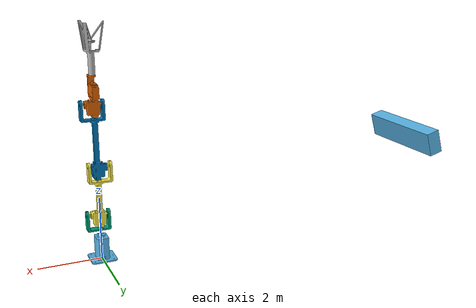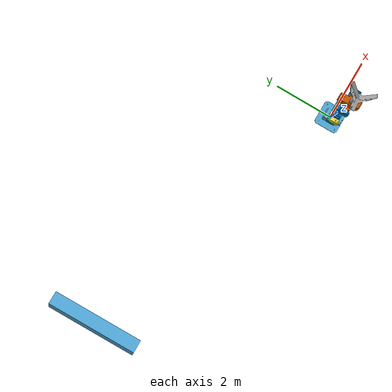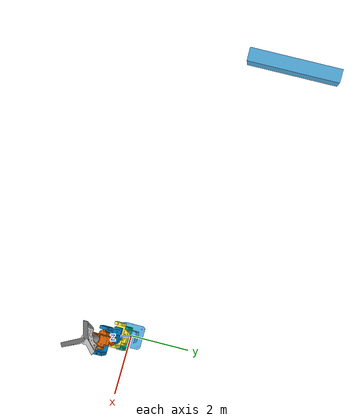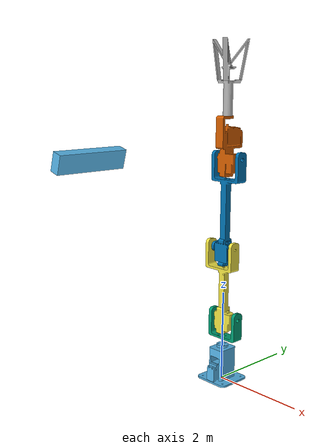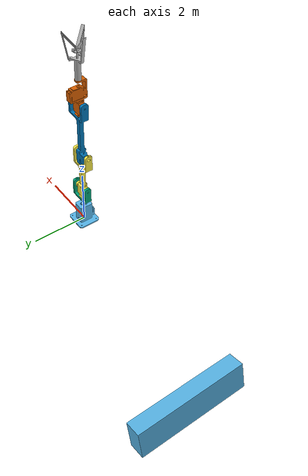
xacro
<?xml version="1.0"?>
<robot xmlns:xacro="http://www.ros.org/wiki/xacro" name="dast_1">

    <!-- VARIABLES -->
    <xacro:arg name="is_sim" default="true"/>
    <xacro:property name="path" value="package://description/meshes" />
    <xacro:property name="scale" value="0.01 0.01 0.01" />
    <xacro:property name="PI" value="3.14159265359" />
    <xacro:property name="effort" value="20.0" />
    <xacro:property name="velocity" value="10.0" />

    <xacro:property name="kinect_xyz" value="-9.0 3.1 3.9" />
    <xacro:property name="kinect_rpy" value="0 0.279 0" />

    <xacro:property name="kinect_hfov" value="1.0542" />
    <xacro:property name="kinect_clip_near" value="5.0" />
    <xacro:property name="kinect_clip_far" value="40.0" />

    <xacro:macro name="default_inertial" params="mass">
        <inertial>
            <origin xyz="0 0 0" rpy="0 0 0"/>
            <mass value="${mass}" />
            <inertia ixx="1.0" ixy="0.0" ixz="0.0" iyy="1.0" iyz="0.0" izz="1.0" />
        </inertial>
    </xacro:macro>

    <!-- LINKS -->
    <link name="world"/>

    <link name="base_link">
        <xacro:default_inertial mass="0.2"/>
        <visual>
            <origin rpy="0 0 0" xyz="0 0 0"/>
            <geometry>
                <mesh filename="${path}/base.stl" scale="${scale}"/>
            </geometry>
        </visual>
        <collision>
            <origin rpy="0 0 0" xyz="0 0 0"/>
            <geometry>
                <mesh filename="${path}/base_collision.stl" scale="${scale}"/>
            </geometry>
        </collision>
    </link>

    <link name="rotary_link">
        <xacro:default_inertial mass="0.05"/>
        <visual>
            <origin rpy="0 0 ${PI/2}" xyz="0 0 0"/>
            <geometry>
                <mesh filename="${path}/rotary.stl" scale="${scale}"/>
            </geometry>
        </visual>
        <collision>
            <origin rpy="-${PI/2} 0 -${PI/2}" xyz="0 0 0"/>
            <geometry>
                <mesh filename="${path}/rotary_collision.stl" scale="${scale}"/>
            </geometry>
        </collision>
    </link>

    <link name="arm_1_link">
        <xacro:default_inertial mass="0.1"/>
        <visual>
            <origin rpy="0 ${PI/2} ${PI}" xyz="0 0 0"/>
            <geometry>
                <mesh filename="${path}/arm_1.stl" scale="${scale}"/>
            </geometry>
        </visual>
        <collision>
            <origin rpy="0 ${PI/2} ${PI}" xyz="0 0 0"/>
            <geometry>
                <mesh filename="${path}/arm_1_collision.stl" scale="${scale}"/>
            </geometry>
        </collision>
    </link>

    <link name="arm_2_link">
        <xacro:default_inertial mass="0.1"/>
        <visual>
            <origin rpy="0 ${PI/2} 0" xyz="0 0 0"/>
            <geometry>
                <mesh filename="${path}/arm_2.stl" scale="${scale}"/>
            </geometry>
        </visual>
        <collision>
            <origin rpy="0 ${PI/2} 0" xyz="0 0 0"/>
            <geometry>
                <mesh filename="${path}/arm_2_collision.stl" scale="${scale}"/>
            </geometry>
        </collision>
    </link>

    <link name="arm_3_link">
        <xacro:default_inertial mass="0.1"/>
        <visual>
            <origin rpy="0 ${PI/2} ${PI}" xyz="0 0 0"/>
            <geometry>
                <mesh filename="${path}/arm_3.stl" scale="${scale}"/>
            </geometry>
        </visual>
        <collision>
            <origin rpy="0 ${PI/2} ${PI}" xyz="0 0 0"/>
            <geometry>
                <mesh filename="${path}/arm_3_collision.stl" scale="${scale}"/>
            </geometry>
        </collision>
    </link>

    <link name="wrist_link">
        <xacro:default_inertial mass="0.01"/>
    </link>

    <link name="gripper_link">
        <xacro:default_inertial mass="0.05"/>
        <visual>
            <origin rpy="-${PI/2} 0 ${PI}" xyz="0 0 0"/>
            <geometry>
                <mesh filename="${path}/gripper_3.stl" scale="${scale}"/>
            </geometry>
        </visual>
        <collision>
            <origin rpy="-${PI/2} 0 ${PI}" xyz="0 0 0"/>
            <geometry>
                <mesh filename="${path}/gripper_3_collision.stl" scale="${scale}"/>
            </geometry>
        </collision>
    </link>

    <link name="tip"/>

    <!-- JOINTS -->
    <joint name="virtual_joint" type="fixed">
        <parent link="world"/>
        <child link="base_link"/>
        <origin xyz="0 0 0" rpy="0 0 0"/>
    </joint>

    <joint name ="joint_1" type="revolute">
        <parent link="base_link"/>
        <child link = "rotary_link"/>
        <origin xyz="0 0 1.47"/>
        <axis xyz="0 0 1"/>
        <limit lower="-${PI / 2}" upper="${PI / 2}"
               effort="${effort}" velocity="${velocity}"/>
    </joint>

    <joint name ="joint_2" type="revolute">
        <parent link="rotary_link"/>
        <child link = "arm_1_link"/>
        <origin xyz="0 0 0"/>
        <axis xyz="1 0 0"/>
        <limit lower="-${PI / 2}" upper="${PI / 2}"
               effort="${effort}" velocity="${velocity}"/>
    </joint>

    <joint name ="joint_3" type="revolute">
        <parent link="arm_1_link"/>
        <child link = "arm_2_link"/>
        <origin xyz="0 0 1.545"/>
        <axis xyz="1 0 0"/>
        <limit lower="-${PI / 2}" upper="${PI / 2}"
               effort="${effort}" velocity="${velocity}"/>
    </joint>

    <joint name ="joint_4" type="revolute">
        <parent link="arm_2_link"/>
        <child link = "arm_3_link"/>
        <origin xyz="0 0 1.945"/>
        <axis xyz="1 0 0"/>
        <limit lower="-${PI / 2}" upper="${PI / 2}"
               effort="${effort}" velocity="${velocity}"/>
    </joint>

    <joint name ="joint_5" type="revolute">
        <parent link="arm_3_link"/>
        <child link = "wrist_link"/>
        <origin xyz="0 0 0.88"/>
        <axis xyz="0 0 1"/>
        <limit lower="-${PI / 2}" upper="${PI / 2}"
               effort="${effort}" velocity="${velocity}"/>
    </joint>

    <joint name ="joint_6" type="revolute">
        <parent link="wrist_link"/>
        <child link = "gripper_link"/>
        <origin xyz="0 0 0"/>
        <axis xyz="0 1 0"/>
        <limit lower="-${PI / 2}" upper="${PI / 2}"
               effort="${effort}" velocity="${velocity}"/>
    </joint>

    <joint name="virtual_joint_tip" type="fixed">
        <parent link="gripper_link"/>
        <child link="tip"/>
        <origin xyz="0 0 1.75" rpy="0 0 0"/>
    </joint>

    <!-- KINECT -->
    <link name="kinect_link">
        <xacro:default_inertial mass="0.5"/>
        <visual>
            <origin rpy="0 0 0" xyz="0 0 0"/>
            <geometry>
                <box size="0.4 2.8 0.7"/>
            </geometry>
        </visual>
        <collision>
            <origin rpy="0 0 0" xyz="0 0 0"/>
            <geometry>
                <box size="0.4 2.8 0.7"/>
            </geometry>
        </collision>
    </link>

    <!-- Images and clouds are published in the optical convention: z forward out
         of the lens, x right, y down. kinect_link itself is the ordinary robot
         convention, x forward. -->
    <link name="kinect_rgb_optical_frame"/>

    <joint name="kinect_joint" type="fixed">
        <parent link="base_link"/>
        <child link="kinect_link"/>
        <origin xyz="${kinect_xyz}" rpy="${kinect_rpy}"/>
    </joint>

    <joint name="kinect_optical_joint" type="fixed">
        <parent link="kinect_link"/>
        <child link="kinect_rgb_optical_frame"/>
        <origin xyz="0 0 0" rpy="-${PI/2} 0 -${PI/2}"/>
    </joint>

    <xacro:if value="$(arg is_sim)">
        <gazebo reference="kinect_link">
            <sensor name="kinect" type="rgbd_camera">
                <camera>
                    <horizontal_fov>${kinect_hfov}</horizontal_fov>
                    <image>
                        <width>640</width>
                        <height>480</height>
                        <format>R8G8B8</format>
                    </image>
                    <clip>
                        <near>${kinect_clip_near}</near>
                        <far>${kinect_clip_far}</far>
                    </clip>
                </camera>
                <always_on>1</always_on>
                <update_rate>30</update_rate>
                <visualize>true</visualize>
                <topic>kinect</topic>
                <gz_frame_id>kinect_link</gz_frame_id>
            </sensor>
        </gazebo>
    </xacro:if>

    <!-- Gazebo (for Humble)-->
    <gazebo>
        <plugin filename="gz_ros2_control-system" name="gz_ros2_control::GazeboSimROS2ControlPlugin">
            <parameters>$(find controller)/config/controller.yaml</parameters>
        </plugin>
    </gazebo>

    <!-- Control -->
    <xacro:include filename="$(find description)/urdf/control.xacro" />

</robot>
